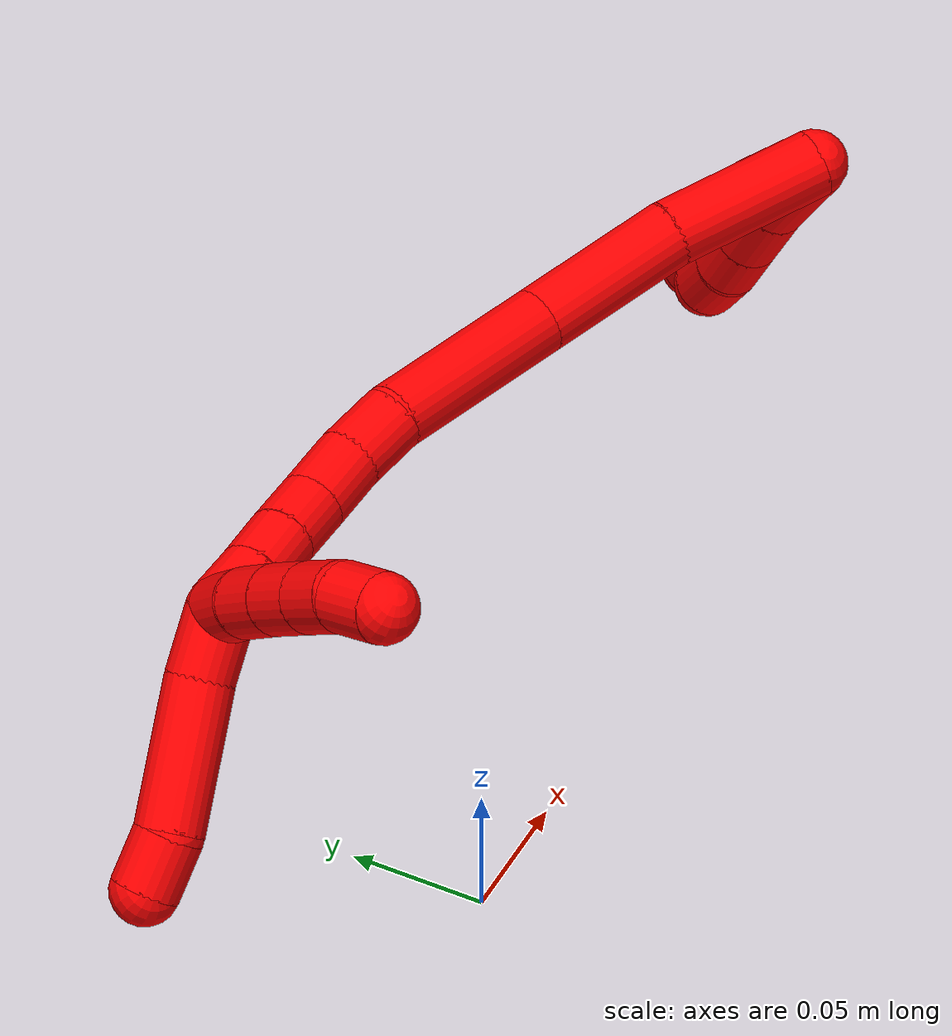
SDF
<sdf version="1.7">
 <world name="default">
  <model name="2">
   <static>0</static>
   <link name="2">
    <collision name="collision-cylinder-e_1_2_8">
     <pose>0.008075 0.010113 -0.036904 -2.87412 0.207986 -1.31955</pose>
     <geometry><cylinder><radius>0.0125</radius><length>0.078216</length></cylinder></geometry>
     <surface>
      <friction><ode><mu>1.16</mu><mu2>1.16</mu2><slip1>0</slip1><slip2>0</slip2></ode></friction>
      <contact><ode><kp>1e+06</kp><kd>1</kd><max_vel>0</max_vel><min_depth>0.001</min_depth></ode></contact>
     </surface>
    </collision>
    <visual name="visual-cylinder-e_1_2_8">
     <pose>0.008075 0.010113 -0.036904 -2.87412 0.207986 -1.31955</pose>
     <geometry><cylinder><radius>0.0125</radius><length>0.078216</length></cylinder></geometry>
     <material><ambient>1 0 0 1</ambient></material>
    </visual>
    <collision name="collision-cylinder-e_2_8_9">
     <pose>0.018265 0.018906 -0.094269 3.07714 0.102737 2.02148</pose>
     <geometry><cylinder><radius>0.0125</radius><length>0.041222</length></cylinder></geometry>
     <surface>
      <friction><ode><mu>1.16</mu><mu2>1.16</mu2><slip1>0</slip1><slip2>0</slip2></ode></friction>
      <contact><ode><kp>1e+06</kp><kd>1</kd><max_vel>0</max_vel><min_depth>0.001</min_depth></ode></contact>
     </surface>
    </collision>
    <visual name="visual-cylinder-e_2_8_9">
     <pose>0.018265 0.018906 -0.094269 3.07714 0.102737 2.02148</pose>
     <geometry><cylinder><radius>0.0125</radius><length>0.041222</length></cylinder></geometry>
     <material><ambient>1 0 0 1</ambient></material>
    </visual>
    <collision name="collision-cylinder-e_3_9_6">
     <pose>0.02263 0.01883 -0.129791 -3.05914 0.147914 -2.12557</pose>
     <geometry><cylinder><radius>0.0125</radius><length>0.030562</length></cylinder></geometry>
     <surface>
      <friction><ode><mu>1.16</mu><mu2>1.16</mu2><slip1>0</slip1><slip2>0</slip2></ode></friction>
      <contact><ode><kp>1e+06</kp><kd>1</kd><max_vel>0</max_vel><min_depth>0.001</min_depth></ode></contact>
     </surface>
    </collision>
    <visual name="visual-cylinder-e_3_9_6">
     <pose>0.02263 0.01883 -0.129791 -3.05914 0.147914 -2.12557</pose>
     <geometry><cylinder><radius>0.0125</radius><length>0.030562</length></cylinder></geometry>
     <material><ambient>1 0 0 1</ambient></material>
    </visual>
    <collision name="collision-cylinder-e_1_2_10">
     <pose>-0.000705 -0.00081 -0.016174 3.09157 -0.043484 -1.43119</pose>
     <geometry><cylinder><radius>0.0125</radius><length>0.032419</length></cylinder></geometry>
     <surface>
      <friction><ode><mu>1.16</mu><mu2>1.16</mu2><slip1>0</slip1><slip2>0</slip2></ode></friction>
      <contact><ode><kp>1e+06</kp><kd>1</kd><max_vel>0</max_vel><min_depth>0.001</min_depth></ode></contact>
     </surface>
    </collision>
    <visual name="visual-cylinder-e_1_2_10">
     <pose>-0.000705 -0.00081 -0.016174 3.09157 -0.043484 -1.43119</pose>
     <geometry><cylinder><radius>0.0125</radius><length>0.032419</length></cylinder></geometry>
     <material><ambient>1 0 0 1</ambient></material>
    </visual>
    <collision name="collision-cylinder-e_2_10_11">
     <pose>-0.000852 -0.002809 -0.045315 3.0501 0.042779 0.874343</pose>
     <geometry><cylinder><radius>0.0125</radius><length>0.026066</length></cylinder></geometry>
     <surface>
      <friction><ode><mu>1.16</mu><mu2>1.16</mu2><slip1>0</slip1><slip2>0</slip2></ode></friction>
      <contact><ode><kp>1e+06</kp><kd>1</kd><max_vel>0</max_vel><min_depth>0.001</min_depth></ode></contact>
     </surface>
    </collision>
    <visual name="visual-cylinder-e_2_10_11">
     <pose>-0.000852 -0.002809 -0.045315 3.0501 0.042779 0.874343</pose>
     <geometry><cylinder><radius>0.0125</radius><length>0.026066</length></cylinder></geometry>
     <material><ambient>1 0 0 1</ambient></material>
    </visual>
    <collision name="collision-cylinder-e_3_11_12">
     <pose>0.000163 -0.005053 -0.06863 3.04001 0.043973 0.816575</pose>
     <geometry><cylinder><radius>0.0125</radius><length>0.020825</length></cylinder></geometry>
     <surface>
      <friction><ode><mu>1.16</mu><mu2>1.16</mu2><slip1>0</slip1><slip2>0</slip2></ode></friction>
      <contact><ode><kp>1e+06</kp><kd>1</kd><max_vel>0</max_vel><min_depth>0.001</min_depth></ode></contact>
     </surface>
    </collision>
    <visual name="visual-cylinder-e_3_11_12">
     <pose>0.000163 -0.005053 -0.06863 3.04001 0.043973 0.816575</pose>
     <geometry><cylinder><radius>0.0125</radius><length>0.020825</length></cylinder></geometry>
     <material><ambient>1 0 0 1</ambient></material>
    </visual>
    <collision name="collision-cylinder-e_4_12_5">
     <pose>0.001464 -0.005422 -0.089267 -3.075 0.08163 -1.77313</pose>
     <geometry><cylinder><radius>0.0125</radius><length>0.02069</length></cylinder></geometry>
     <surface>
      <friction><ode><mu>1.16</mu><mu2>1.16</mu2><slip1>0</slip1><slip2>0</slip2></ode></friction>
      <contact><ode><kp>1e+06</kp><kd>1</kd><max_vel>0</max_vel><min_depth>0.001</min_depth></ode></contact>
     </surface>
    </collision>
    <visual name="visual-cylinder-e_4_12_5">
     <pose>0.001464 -0.005422 -0.089267 -3.075 0.08163 -1.77313</pose>
     <geometry><cylinder><radius>0.0125</radius><length>0.02069</length></cylinder></geometry>
     <material><ambient>1 0 0 1</ambient></material>
    </visual>
    <collision name="collision-cylinder-e_1_2_13">
     <pose>-0.027632 -0.007959 -0.008873 2.41046 -1.16353 -2.08745</pose>
     <geometry><cylinder><radius>0.0125</radius><length>0.060187</length></cylinder></geometry>
     <surface>
      <friction><ode><mu>1.16</mu><mu2>1.16</mu2><slip1>0</slip1><slip2>0</slip2></ode></friction>
      <contact><ode><kp>1e+06</kp><kd>1</kd><max_vel>0</max_vel><min_depth>0.001</min_depth></ode></contact>
     </surface>
    </collision>
    <visual name="visual-cylinder-e_1_2_13">
     <pose>-0.027632 -0.007959 -0.008873 2.41046 -1.16353 -2.08745</pose>
     <geometry><cylinder><radius>0.0125</radius><length>0.060187</length></cylinder></geometry>
     <material><ambient>1 0 0 1</ambient></material>
    </visual>
    <collision name="collision-cylinder-e_2_13_14">
     <pose>-0.08173 -0.027785 -0.024905 2.1136 -1.08841 -1.64009</pose>
     <geometry><cylinder><radius>0.0125</radius><length>0.05975</length></cylinder></geometry>
     <surface>
      <friction><ode><mu>1.16</mu><mu2>1.16</mu2><slip1>0</slip1><slip2>0</slip2></ode></friction>
      <contact><ode><kp>1e+06</kp><kd>1</kd><max_vel>0</max_vel><min_depth>0.001</min_depth></ode></contact>
     </surface>
    </collision>
    <visual name="visual-cylinder-e_2_13_14">
     <pose>-0.08173 -0.027785 -0.024905 2.1136 -1.08841 -1.64009</pose>
     <geometry><cylinder><radius>0.0125</radius><length>0.05975</length></cylinder></geometry>
     <material><ambient>1 0 0 1</ambient></material>
    </visual>
    <collision name="collision-cylinder-e_3_14_15">
     <pose>-0.140821 -0.055223 -0.03238 1.59106 -1.1254 -1.14376</pose>
     <geometry><cylinder><radius>0.0125</radius><length>0.072303</length></cylinder></geometry>
     <surface>
      <friction><ode><mu>1.16</mu><mu2>1.16</mu2><slip1>0</slip1><slip2>0</slip2></ode></friction>
      <contact><ode><kp>1e+06</kp><kd>1</kd><max_vel>0</max_vel><min_depth>0.001</min_depth></ode></contact>
     </surface>
    </collision>
    <visual name="visual-cylinder-e_3_14_15">
     <pose>-0.140821 -0.055223 -0.03238 1.59106 -1.1254 -1.14376</pose>
     <geometry><cylinder><radius>0.0125</radius><length>0.072303</length></cylinder></geometry>
     <material><ambient>1 0 0 1</ambient></material>
    </visual>
    <collision name="collision-cylinder-e_4_15_16">
     <pose>-0.182998 -0.077254 -0.034239 1.80538 -0.963249 -1.16996</pose>
     <geometry><cylinder><radius>0.0125</radius><length>0.023267</length></cylinder></geometry>
     <surface>
      <friction><ode><mu>1.16</mu><mu2>1.16</mu2><slip1>0</slip1><slip2>0</slip2></ode></friction>
      <contact><ode><kp>1e+06</kp><kd>1</kd><max_vel>0</max_vel><min_depth>0.001</min_depth></ode></contact>
     </surface>
    </collision>
    <visual name="visual-cylinder-e_4_15_16">
     <pose>-0.182998 -0.077254 -0.034239 1.80538 -0.963249 -1.16996</pose>
     <geometry><cylinder><radius>0.0125</radius><length>0.023267</length></cylinder></geometry>
     <material><ambient>1 0 0 1</ambient></material>
    </visual>
    <collision name="collision-cylinder-e_5_16_17">
     <pose>-0.20172 -0.091201 -0.0357 1.55976 -0.886052 -0.877532</pose>
     <geometry><cylinder><radius>0.0125</radius><length>0.02368</length></cylinder></geometry>
     <surface>
      <friction><ode><mu>1.16</mu><mu2>1.16</mu2><slip1>0</slip1><slip2>0</slip2></ode></friction>
      <contact><ode><kp>1e+06</kp><kd>1</kd><max_vel>0</max_vel><min_depth>0.001</min_depth></ode></contact>
     </surface>
    </collision>
    <visual name="visual-cylinder-e_5_16_17">
     <pose>-0.20172 -0.091201 -0.0357 1.55976 -0.886052 -0.877532</pose>
     <geometry><cylinder><radius>0.0125</radius><length>0.02368</length></cylinder></geometry>
     <material><ambient>1 0 0 1</ambient></material>
    </visual>
    <collision name="collision-cylinder-e_6_17_18">
     <pose>-0.218818 -0.104981 -0.034176 1.34561 -0.887371 -0.724065</pose>
     <geometry><cylinder><radius>0.0125</radius><length>0.020445</length></cylinder></geometry>
     <surface>
      <friction><ode><mu>1.16</mu><mu2>1.16</mu2><slip1>0</slip1><slip2>0</slip2></ode></friction>
      <contact><ode><kp>1e+06</kp><kd>1</kd><max_vel>0</max_vel><min_depth>0.001</min_depth></ode></contact>
     </surface>
    </collision>
    <visual name="visual-cylinder-e_6_17_18">
     <pose>-0.218818 -0.104981 -0.034176 1.34561 -0.887371 -0.724065</pose>
     <geometry><cylinder><radius>0.0125</radius><length>0.020445</length></cylinder></geometry>
     <material><ambient>1 0 0 1</ambient></material>
    </visual>
    <collision name="collision-cylinder-e_7_18_19">
     <pose>-0.234408 -0.117719 -0.031422 1.36989 -0.861478 -0.718185</pose>
     <geometry><cylinder><radius>0.0125</radius><length>0.020199</length></cylinder></geometry>
     <surface>
      <friction><ode><mu>1.16</mu><mu2>1.16</mu2><slip1>0</slip1><slip2>0</slip2></ode></friction>
      <contact><ode><kp>1e+06</kp><kd>1</kd><max_vel>0</max_vel><min_depth>0.001</min_depth></ode></contact>
     </surface>
    </collision>
    <visual name="visual-cylinder-e_7_18_19">
     <pose>-0.234408 -0.117719 -0.031422 1.36989 -0.861478 -0.718185</pose>
     <geometry><cylinder><radius>0.0125</radius><length>0.020199</length></cylinder></geometry>
     <material><ambient>1 0 0 1</ambient></material>
    </visual>
    <collision name="collision-cylinder-e_8_19_1">
     <pose>-0.249983 -0.130338 -0.029111 1.41053 -0.901941 -0.782058</pose>
     <geometry><cylinder><radius>0.0125</radius><length>0.020169</length></cylinder></geometry>
     <surface>
      <friction><ode><mu>1.16</mu><mu2>1.16</mu2><slip1>0</slip1><slip2>0</slip2></ode></friction>
      <contact><ode><kp>1e+06</kp><kd>1</kd><max_vel>0</max_vel><min_depth>0.001</min_depth></ode></contact>
     </surface>
    </collision>
    <visual name="visual-cylinder-e_8_19_1">
     <pose>-0.249983 -0.130338 -0.029111 1.41053 -0.901941 -0.782058</pose>
     <geometry><cylinder><radius>0.0125</radius><length>0.020169</length></cylinder></geometry>
     <material><ambient>1 0 0 1</ambient></material>
    </visual>
    <collision name="collision-cylinder-e_1_1_20">
     <pose>-0.257805 -0.138977 -0.018423 0.249199 0.008994 0.001126</pose>
     <geometry><cylinder><radius>0.0125</radius><length>0.02</length></cylinder></geometry>
     <surface>
      <friction><ode><mu>1.16</mu><mu2>1.16</mu2><slip1>0</slip1><slip2>0</slip2></ode></friction>
      <contact><ode><kp>1e+06</kp><kd>1</kd><max_vel>0</max_vel><min_depth>0.001</min_depth></ode></contact>
     </surface>
    </collision>
    <visual name="visual-cylinder-e_1_1_20">
     <pose>-0.257805 -0.138977 -0.018423 0.249199 0.008994 0.001126</pose>
     <geometry><cylinder><radius>0.0125</radius><length>0.02</length></cylinder></geometry>
     <material><ambient>1 0 0 1</ambient></material>
    </visual>
    <collision name="collision-cylinder-e_2_20_21">
     <pose>-0.256427 -0.144525 0.000694 0.316019 0.129125 0.020602</pose>
     <geometry><cylinder><radius>0.0125</radius><length>0.02</length></cylinder></geometry>
     <surface>
      <friction><ode><mu>1.16</mu><mu2>1.16</mu2><slip1>0</slip1><slip2>0</slip2></ode></friction>
      <contact><ode><kp>1e+06</kp><kd>1</kd><max_vel>0</max_vel><min_depth>0.001</min_depth></ode></contact>
     </surface>
    </collision>
    <visual name="visual-cylinder-e_2_20_21">
     <pose>-0.256427 -0.144525 0.000694 0.316019 0.129125 0.020602</pose>
     <geometry><cylinder><radius>0.0125</radius><length>0.02</length></cylinder></geometry>
     <material><ambient>1 0 0 1</ambient></material>
    </visual>
    <collision name="collision-cylinder-e_3_21_22">
     <pose>-0.253605 -0.150941 0.019422 0.344167 0.154096 0.026834</pose>
     <geometry><cylinder><radius>0.0125</radius><length>0.02</length></cylinder></geometry>
     <surface>
      <friction><ode><mu>1.16</mu><mu2>1.16</mu2><slip1>0</slip1><slip2>0</slip2></ode></friction>
      <contact><ode><kp>1e+06</kp><kd>1</kd><max_vel>0</max_vel><min_depth>0.001</min_depth></ode></contact>
     </surface>
    </collision>
    <visual name="visual-cylinder-e_3_21_22">
     <pose>-0.253605 -0.150941 0.019422 0.344167 0.154096 0.026834</pose>
     <geometry><cylinder><radius>0.0125</radius><length>0.02</length></cylinder></geometry>
     <material><ambient>1 0 0 1</ambient></material>
    </visual>
    <collision name="collision-cylinder-e_4_22_23">
     <pose>-0.250701 -0.157723 0.03801 0.355514 0.137246 0.024694</pose>
     <geometry><cylinder><radius>0.0125</radius><length>0.02</length></cylinder></geometry>
     <surface>
      <friction><ode><mu>1.16</mu><mu2>1.16</mu2><slip1>0</slip1><slip2>0</slip2></ode></friction>
      <contact><ode><kp>1e+06</kp><kd>1</kd><max_vel>0</max_vel><min_depth>0.001</min_depth></ode></contact>
     </surface>
    </collision>
    <visual name="visual-cylinder-e_4_22_23">
     <pose>-0.250701 -0.157723 0.03801 0.355514 0.137246 0.024694</pose>
     <geometry><cylinder><radius>0.0125</radius><length>0.02</length></cylinder></geometry>
     <material><ambient>1 0 0 1</ambient></material>
    </visual>
    <collision name="collision-cylinder-e_5_23_4">
     <pose>-0.246546 -0.166537 0.055262 0.592798 0.282527 0.086806</pose>
     <geometry><cylinder><radius>0.0125</radius><length>0.02</length></cylinder></geometry>
     <surface>
      <friction><ode><mu>1.16</mu><mu2>1.16</mu2><slip1>0</slip1><slip2>0</slip2></ode></friction>
      <contact><ode><kp>1e+06</kp><kd>1</kd><max_vel>0</max_vel><min_depth>0.001</min_depth></ode></contact>
     </surface>
    </collision>
    <visual name="visual-cylinder-e_5_23_4">
     <pose>-0.246546 -0.166537 0.055262 0.592798 0.282527 0.086806</pose>
     <geometry><cylinder><radius>0.0125</radius><length>0.02</length></cylinder></geometry>
     <material><ambient>1 0 0 1</ambient></material>
    </visual>
    <collision name="collision-cylinder-e_1_1_24">
     <pose>-0.261736 -0.146384 -0.034525 2.14676 -0.315432 -0.569883</pose>
     <geometry><cylinder><radius>0.0125</radius><length>0.024768</length></cylinder></geometry>
     <surface>
      <friction><ode><mu>1.16</mu><mu2>1.16</mu2><slip1>0</slip1><slip2>0</slip2></ode></friction>
      <contact><ode><kp>1e+06</kp><kd>1</kd><max_vel>0</max_vel><min_depth>0.001</min_depth></ode></contact>
     </surface>
    </collision>
    <visual name="visual-cylinder-e_1_1_24">
     <pose>-0.261736 -0.146384 -0.034525 2.14676 -0.315432 -0.569883</pose>
     <geometry><cylinder><radius>0.0125</radius><length>0.024768</length></cylinder></geometry>
     <material><ambient>1 0 0 1</ambient></material>
    </visual>
    <collision name="collision-cylinder-e_2_24_25">
     <pose>-0.273265 -0.17995 -0.051047 1.9741 -0.289994 -0.435134</pose>
     <geometry><cylinder><radius>0.0125</radius><length>0.053762</length></cylinder></geometry>
     <surface>
      <friction><ode><mu>1.16</mu><mu2>1.16</mu2><slip1>0</slip1><slip2>0</slip2></ode></friction>
      <contact><ode><kp>1e+06</kp><kd>1</kd><max_vel>0</max_vel><min_depth>0.001</min_depth></ode></contact>
     </surface>
    </collision>
    <visual name="visual-cylinder-e_2_24_25">
     <pose>-0.273265 -0.17995 -0.051047 1.9741 -0.289994 -0.435134</pose>
     <geometry><cylinder><radius>0.0125</radius><length>0.053762</length></cylinder></geometry>
     <material><ambient>1 0 0 1</ambient></material>
    </visual>
    <collision name="collision-cylinder-e_3_25_3">
     <pose>-0.285023 -0.211445 -0.067302 2.23794 -0.389036 -0.77124</pose>
     <geometry><cylinder><radius>0.0125</radius><length>0.02147</length></cylinder></geometry>
     <surface>
      <friction><ode><mu>1.16</mu><mu2>1.16</mu2><slip1>0</slip1><slip2>0</slip2></ode></friction>
      <contact><ode><kp>1e+06</kp><kd>1</kd><max_vel>0</max_vel><min_depth>0.001</min_depth></ode></contact>
     </surface>
    </collision>
    <visual name="visual-cylinder-e_3_25_3">
     <pose>-0.285023 -0.211445 -0.067302 2.23794 -0.389036 -0.77124</pose>
     <geometry><cylinder><radius>0.0125</radius><length>0.02147</length></cylinder></geometry>
     <material><ambient>1 0 0 1</ambient></material>
    </visual>
    <collision name="collision-sphere-3">
     <pose>-0.289095 -0.219248 -0.073448 0 -0 0</pose>
     <geometry><sphere><radius>0.0125</radius></sphere></geometry>
     <surface>
      <friction><ode><mu>1.16</mu><mu2>1.16</mu2><slip1>0</slip1><slip2>0</slip2></ode></friction>
      <contact><ode><kp>1e+06</kp><kd>1</kd><max_vel>0</max_vel><min_depth>0.001</min_depth></ode></contact>
     </surface>
    </collision>
    <visual name="visual-sphere-3">
     <pose>-0.289095 -0.219248 -0.073448 0 -0 0</pose>
     <geometry><sphere><radius>0.0125</radius></sphere></geometry>
     <material><ambient>1 0 0 1</ambient></material>
    </visual>
    <collision name="collision-sphere-25">
     <pose>-0.280951 -0.203642 -0.061156 0 -0 0</pose>
     <geometry><sphere><radius>0.0125</radius></sphere></geometry>
     <surface>
      <friction><ode><mu>1.16</mu><mu2>1.16</mu2><slip1>0</slip1><slip2>0</slip2></ode></friction>
      <contact><ode><kp>1e+06</kp><kd>1</kd><max_vel>0</max_vel><min_depth>0.001</min_depth></ode></contact>
     </surface>
    </collision>
    <visual name="visual-sphere-25">
     <pose>-0.280951 -0.203642 -0.061156 0 -0 0</pose>
     <geometry><sphere><radius>0.0125</radius></sphere></geometry>
     <material><ambient>1 0 0 1</ambient></material>
    </visual>
    <collision name="collision-sphere-24">
     <pose>-0.265578 -0.156258 -0.040938 0 -0 0</pose>
     <geometry><sphere><radius>0.0125</radius></sphere></geometry>
     <surface>
      <friction><ode><mu>1.16</mu><mu2>1.16</mu2><slip1>0</slip1><slip2>0</slip2></ode></friction>
      <contact><ode><kp>1e+06</kp><kd>1</kd><max_vel>0</max_vel><min_depth>0.001</min_depth></ode></contact>
     </surface>
    </collision>
    <visual name="visual-sphere-24">
     <pose>-0.265578 -0.156258 -0.040938 0 -0 0</pose>
     <geometry><sphere><radius>0.0125</radius></sphere></geometry>
     <material><ambient>1 0 0 1</ambient></material>
    </visual>
    <collision name="collision-sphere-4">
     <pose>-0.243758 -0.171902 0.063227 0 -0 0</pose>
     <geometry><sphere><radius>0.0125</radius></sphere></geometry>
     <surface>
      <friction><ode><mu>1.16</mu><mu2>1.16</mu2><slip1>0</slip1><slip2>0</slip2></ode></friction>
      <contact><ode><kp>1e+06</kp><kd>1</kd><max_vel>0</max_vel><min_depth>0.001</min_depth></ode></contact>
     </surface>
    </collision>
    <visual name="visual-sphere-4">
     <pose>-0.243758 -0.171902 0.063227 0 -0 0</pose>
     <geometry><sphere><radius>0.0125</radius></sphere></geometry>
     <material><ambient>1 0 0 1</ambient></material>
    </visual>
    <collision name="collision-sphere-23">
     <pose>-0.249333 -0.161171 0.047297 0 -0 0</pose>
     <geometry><sphere><radius>0.0125</radius></sphere></geometry>
     <surface>
      <friction><ode><mu>1.16</mu><mu2>1.16</mu2><slip1>0</slip1><slip2>0</slip2></ode></friction>
      <contact><ode><kp>1e+06</kp><kd>1</kd><max_vel>0</max_vel><min_depth>0.001</min_depth></ode></contact>
     </surface>
    </collision>
    <visual name="visual-sphere-23">
     <pose>-0.249333 -0.161171 0.047297 0 -0 0</pose>
     <geometry><sphere><radius>0.0125</radius></sphere></geometry>
     <material><ambient>1 0 0 1</ambient></material>
    </visual>
    <collision name="collision-sphere-22">
     <pose>-0.25207 -0.154275 0.028724 0 -0 0</pose>
     <geometry><sphere><radius>0.0125</radius></sphere></geometry>
     <surface>
      <friction><ode><mu>1.16</mu><mu2>1.16</mu2><slip1>0</slip1><slip2>0</slip2></ode></friction>
      <contact><ode><kp>1e+06</kp><kd>1</kd><max_vel>0</max_vel><min_depth>0.001</min_depth></ode></contact>
     </surface>
    </collision>
    <visual name="visual-sphere-22">
     <pose>-0.25207 -0.154275 0.028724 0 -0 0</pose>
     <geometry><sphere><radius>0.0125</radius></sphere></geometry>
     <material><ambient>1 0 0 1</ambient></material>
    </visual>
    <collision name="collision-sphere-21">
     <pose>-0.255139 -0.147607 0.01012 0 -0 0</pose>
     <geometry><sphere><radius>0.0125</radius></sphere></geometry>
     <surface>
      <friction><ode><mu>1.16</mu><mu2>1.16</mu2><slip1>0</slip1><slip2>0</slip2></ode></friction>
      <contact><ode><kp>1e+06</kp><kd>1</kd><max_vel>0</max_vel><min_depth>0.001</min_depth></ode></contact>
     </surface>
    </collision>
    <visual name="visual-sphere-21">
     <pose>-0.255139 -0.147607 0.01012 0 -0 0</pose>
     <geometry><sphere><radius>0.0125</radius></sphere></geometry>
     <material><ambient>1 0 0 1</ambient></material>
    </visual>
    <collision name="collision-sphere-20">
     <pose>-0.257715 -0.141443 -0.008732 0 -0 0</pose>
     <geometry><sphere><radius>0.0125</radius></sphere></geometry>
     <surface>
      <friction><ode><mu>1.16</mu><mu2>1.16</mu2><slip1>0</slip1><slip2>0</slip2></ode></friction>
      <contact><ode><kp>1e+06</kp><kd>1</kd><max_vel>0</max_vel><min_depth>0.001</min_depth></ode></contact>
     </surface>
    </collision>
    <visual name="visual-sphere-20">
     <pose>-0.257715 -0.141443 -0.008732 0 -0 0</pose>
     <geometry><sphere><radius>0.0125</radius></sphere></geometry>
     <material><ambient>1 0 0 1</ambient></material>
    </visual>
    <collision name="collision-sphere-11">
     <pose>-0.000295 -0.003999 -0.058282 0 -0 0</pose>
     <geometry><sphere><radius>0.0125</radius></sphere></geometry>
     <surface>
      <friction><ode><mu>1.16</mu><mu2>1.16</mu2><slip1>0</slip1><slip2>0</slip2></ode></friction>
      <contact><ode><kp>1e+06</kp><kd>1</kd><max_vel>0</max_vel><min_depth>0.001</min_depth></ode></contact>
     </surface>
    </collision>
    <visual name="visual-sphere-11">
     <pose>-0.000295 -0.003999 -0.058282 0 -0 0</pose>
     <geometry><sphere><radius>0.0125</radius></sphere></geometry>
     <material><ambient>1 0 0 1</ambient></material>
    </visual>
    <collision name="collision-sphere-10">
     <pose>-0.001409 -0.001619 -0.032348 0 -0 0</pose>
     <geometry><sphere><radius>0.0125</radius></sphere></geometry>
     <surface>
      <friction><ode><mu>1.16</mu><mu2>1.16</mu2><slip1>0</slip1><slip2>0</slip2></ode></friction>
      <contact><ode><kp>1e+06</kp><kd>1</kd><max_vel>0</max_vel><min_depth>0.001</min_depth></ode></contact>
     </surface>
    </collision>
    <visual name="visual-sphere-10">
     <pose>-0.001409 -0.001619 -0.032348 0 -0 0</pose>
     <geometry><sphere><radius>0.0125</radius></sphere></geometry>
     <material><ambient>1 0 0 1</ambient></material>
    </visual>
    <collision name="collision-sphere-6">
     <pose>0.024882 0.020075 -0.144854 0 -0 0</pose>
     <geometry><sphere><radius>0.0125</radius></sphere></geometry>
     <surface>
      <friction><ode><mu>1.16</mu><mu2>1.16</mu2><slip1>0</slip1><slip2>0</slip2></ode></friction>
      <contact><ode><kp>1e+06</kp><kd>1</kd><max_vel>0</max_vel><min_depth>0.001</min_depth></ode></contact>
     </surface>
    </collision>
    <visual name="visual-sphere-6">
     <pose>0.024882 0.020075 -0.144854 0 -0 0</pose>
     <geometry><sphere><radius>0.0125</radius></sphere></geometry>
     <material><ambient>1 0 0 1</ambient></material>
    </visual>
    <collision name="collision-sphere-9">
     <pose>0.020378 0.017586 -0.114729 0 -0 0</pose>
     <geometry><sphere><radius>0.0125</radius></sphere></geometry>
     <surface>
      <friction><ode><mu>1.16</mu><mu2>1.16</mu2><slip1>0</slip1><slip2>0</slip2></ode></friction>
      <contact><ode><kp>1e+06</kp><kd>1</kd><max_vel>0</max_vel><min_depth>0.001</min_depth></ode></contact>
     </surface>
    </collision>
    <visual name="visual-sphere-9">
     <pose>0.020378 0.017586 -0.114729 0 -0 0</pose>
     <geometry><sphere><radius>0.0125</radius></sphere></geometry>
     <material><ambient>1 0 0 1</ambient></material>
    </visual>
    <collision name="collision-sphere-2">
     <geometry><sphere><radius>0.0125</radius></sphere></geometry>
     <surface>
      <friction><ode><mu>1.16</mu><mu2>1.16</mu2><slip1>0</slip1><slip2>0</slip2></ode></friction>
      <contact><ode><kp>1e+06</kp><kd>1</kd><max_vel>0</max_vel><min_depth>0.001</min_depth></ode></contact>
     </surface>
    </collision>
    <visual name="visual-sphere-2">
     <geometry><sphere><radius>0.0125</radius></sphere></geometry>
     <material><ambient>1 0 0 1</ambient></material>
    </visual>
    <collision name="collision-sphere-19">
     <pose>-0.242072 -0.124165 -0.030109 0 -0 0</pose>
     <geometry><sphere><radius>0.0125</radius></sphere></geometry>
     <surface>
      <friction><ode><mu>1.16</mu><mu2>1.16</mu2><slip1>0</slip1><slip2>0</slip2></ode></friction>
      <contact><ode><kp>1e+06</kp><kd>1</kd><max_vel>0</max_vel><min_depth>0.001</min_depth></ode></contact>
     </surface>
    </collision>
    <visual name="visual-sphere-19">
     <pose>-0.242072 -0.124165 -0.030109 0 -0 0</pose>
     <geometry><sphere><radius>0.0125</radius></sphere></geometry>
     <material><ambient>1 0 0 1</ambient></material>
    </visual>
    <collision name="collision-sphere-8">
     <pose>0.016151 0.020227 -0.073809 0 -0 0</pose>
     <geometry><sphere><radius>0.0125</radius></sphere></geometry>
     <surface>
      <friction><ode><mu>1.16</mu><mu2>1.16</mu2><slip1>0</slip1><slip2>0</slip2></ode></friction>
      <contact><ode><kp>1e+06</kp><kd>1</kd><max_vel>0</max_vel><min_depth>0.001</min_depth></ode></contact>
     </surface>
    </collision>
    <visual name="visual-sphere-8">
     <pose>0.016151 0.020227 -0.073809 0 -0 0</pose>
     <geometry><sphere><radius>0.0125</radius></sphere></geometry>
     <material><ambient>1 0 0 1</ambient></material>
    </visual>
    <collision name="collision-sphere-12">
     <pose>0.000621 -0.006108 -0.078979 0 -0 0</pose>
     <geometry><sphere><radius>0.0125</radius></sphere></geometry>
     <surface>
      <friction><ode><mu>1.16</mu><mu2>1.16</mu2><slip1>0</slip1><slip2>0</slip2></ode></friction>
      <contact><ode><kp>1e+06</kp><kd>1</kd><max_vel>0</max_vel><min_depth>0.001</min_depth></ode></contact>
     </surface>
    </collision>
    <visual name="visual-sphere-12">
     <pose>0.000621 -0.006108 -0.078979 0 -0 0</pose>
     <geometry><sphere><radius>0.0125</radius></sphere></geometry>
     <material><ambient>1 0 0 1</ambient></material>
    </visual>
    <collision name="collision-sphere-5">
     <pose>0.002308 -0.004736 -0.099554 0 -0 0</pose>
     <geometry><sphere><radius>0.0125</radius></sphere></geometry>
     <surface>
      <friction><ode><mu>1.16</mu><mu2>1.16</mu2><slip1>0</slip1><slip2>0</slip2></ode></friction>
      <contact><ode><kp>1e+06</kp><kd>1</kd><max_vel>0</max_vel><min_depth>0.001</min_depth></ode></contact>
     </surface>
    </collision>
    <visual name="visual-sphere-5">
     <pose>0.002308 -0.004736 -0.099554 0 -0 0</pose>
     <geometry><sphere><radius>0.0125</radius></sphere></geometry>
     <material><ambient>1 0 0 1</ambient></material>
    </visual>
    <collision name="collision-sphere-13">
     <pose>-0.055264 -0.015918 -0.017747 0 -0 0</pose>
     <geometry><sphere><radius>0.0125</radius></sphere></geometry>
     <surface>
      <friction><ode><mu>1.16</mu><mu2>1.16</mu2><slip1>0</slip1><slip2>0</slip2></ode></friction>
      <contact><ode><kp>1e+06</kp><kd>1</kd><max_vel>0</max_vel><min_depth>0.001</min_depth></ode></contact>
     </surface>
    </collision>
    <visual name="visual-sphere-13">
     <pose>-0.055264 -0.015918 -0.017747 0 -0 0</pose>
     <geometry><sphere><radius>0.0125</radius></sphere></geometry>
     <material><ambient>1 0 0 1</ambient></material>
    </visual>
    <collision name="collision-sphere-14">
     <pose>-0.108196 -0.039652 -0.032064 0 -0 0</pose>
     <geometry><sphere><radius>0.0125</radius></sphere></geometry>
     <surface>
      <friction><ode><mu>1.16</mu><mu2>1.16</mu2><slip1>0</slip1><slip2>0</slip2></ode></friction>
      <contact><ode><kp>1e+06</kp><kd>1</kd><max_vel>0</max_vel><min_depth>0.001</min_depth></ode></contact>
     </surface>
    </collision>
    <visual name="visual-sphere-14">
     <pose>-0.108196 -0.039652 -0.032064 0 -0 0</pose>
     <geometry><sphere><radius>0.0125</radius></sphere></geometry>
     <material><ambient>1 0 0 1</ambient></material>
    </visual>
    <collision name="collision-sphere-15">
     <pose>-0.173446 -0.070795 -0.032695 0 -0 0</pose>
     <geometry><sphere><radius>0.0125</radius></sphere></geometry>
     <surface>
      <friction><ode><mu>1.16</mu><mu2>1.16</mu2><slip1>0</slip1><slip2>0</slip2></ode></friction>
      <contact><ode><kp>1e+06</kp><kd>1</kd><max_vel>0</max_vel><min_depth>0.001</min_depth></ode></contact>
     </surface>
    </collision>
    <visual name="visual-sphere-15">
     <pose>-0.173446 -0.070795 -0.032695 0 -0 0</pose>
     <geometry><sphere><radius>0.0125</radius></sphere></geometry>
     <material><ambient>1 0 0 1</ambient></material>
    </visual>
    <collision name="collision-sphere-16">
     <pose>-0.192549 -0.083713 -0.035782 0 -0 0</pose>
     <geometry><sphere><radius>0.0125</radius></sphere></geometry>
     <surface>
      <friction><ode><mu>1.16</mu><mu2>1.16</mu2><slip1>0</slip1><slip2>0</slip2></ode></friction>
      <contact><ode><kp>1e+06</kp><kd>1</kd><max_vel>0</max_vel><min_depth>0.001</min_depth></ode></contact>
     </surface>
    </collision>
    <visual name="visual-sphere-16">
     <pose>-0.192549 -0.083713 -0.035782 0 -0 0</pose>
     <geometry><sphere><radius>0.0125</radius></sphere></geometry>
     <material><ambient>1 0 0 1</ambient></material>
    </visual>
    <collision name="collision-sphere-17">
     <pose>-0.210891 -0.098689 -0.035617 0 -0 0</pose>
     <geometry><sphere><radius>0.0125</radius></sphere></geometry>
     <surface>
      <friction><ode><mu>1.16</mu><mu2>1.16</mu2><slip1>0</slip1><slip2>0</slip2></ode></friction>
      <contact><ode><kp>1e+06</kp><kd>1</kd><max_vel>0</max_vel><min_depth>0.001</min_depth></ode></contact>
     </surface>
    </collision>
    <visual name="visual-sphere-17">
     <pose>-0.210891 -0.098689 -0.035617 0 -0 0</pose>
     <geometry><sphere><radius>0.0125</radius></sphere></geometry>
     <material><ambient>1 0 0 1</ambient></material>
    </visual>
    <collision name="collision-sphere-18">
     <pose>-0.226745 -0.111273 -0.032734 0 -0 0</pose>
     <geometry><sphere><radius>0.0125</radius></sphere></geometry>
     <surface>
      <friction><ode><mu>1.16</mu><mu2>1.16</mu2><slip1>0</slip1><slip2>0</slip2></ode></friction>
      <contact><ode><kp>1e+06</kp><kd>1</kd><max_vel>0</max_vel><min_depth>0.001</min_depth></ode></contact>
     </surface>
    </collision>
    <visual name="visual-sphere-18">
     <pose>-0.226745 -0.111273 -0.032734 0 -0 0</pose>
     <geometry><sphere><radius>0.0125</radius></sphere></geometry>
     <material><ambient>1 0 0 1</ambient></material>
    </visual>
    <collision name="collision-sphere-1">
     <pose>-0.257895 -0.136511 -0.028113 0 -0 0</pose>
     <geometry><sphere><radius>0.0125</radius></sphere></geometry>
     <surface>
      <friction><ode><mu>1.16</mu><mu2>1.16</mu2><slip1>0</slip1><slip2>0</slip2></ode></friction>
      <contact><ode><kp>1e+06</kp><kd>1</kd><max_vel>0</max_vel><min_depth>0.001</min_depth></ode></contact>
     </surface>
    </collision>
    <visual name="visual-sphere-1">
     <pose>-0.257895 -0.136511 -0.028113 0 -0 0</pose>
     <geometry><sphere><radius>0.0125</radius></sphere></geometry>
     <material><ambient>1 0 0 1</ambient></material>
    </visual>
    <inertial>
     <pose>-0.120725 -0.064569 -0.035722 0 -0 0</pose>
     <mass>0.75</mass>
     <inertia>
      <ixx>-6.5e-05</ixx>
      <ixy>0</ixy>
      <ixz>0</ixz>
      <iyy>-3.6e-05</iyy>
      <iyz>0</iyz>
      <izz>9.3e-05</izz>
     </inertia>
    </inertial>
   </link>
   <pose>0.273545 0.003536 0.128654 0.533912 0.241515 -0.692206</pose>
  </model>
 </world>
</sdf>
